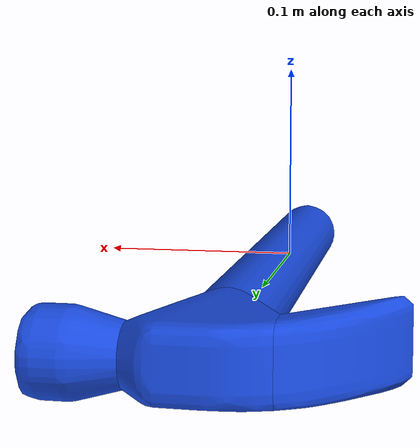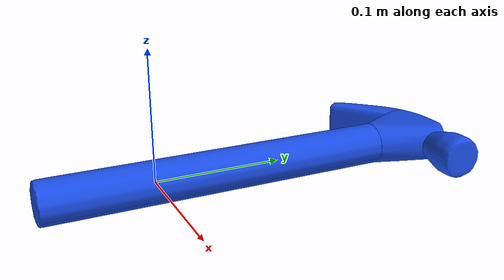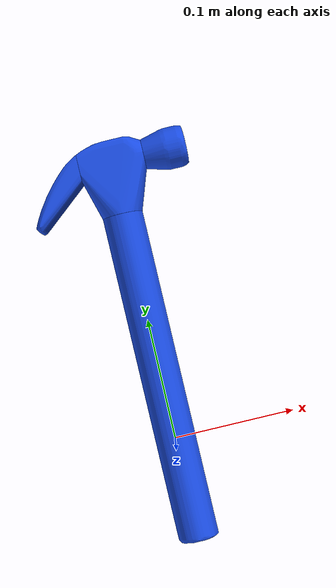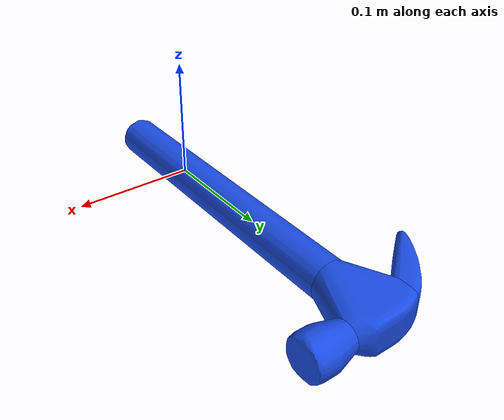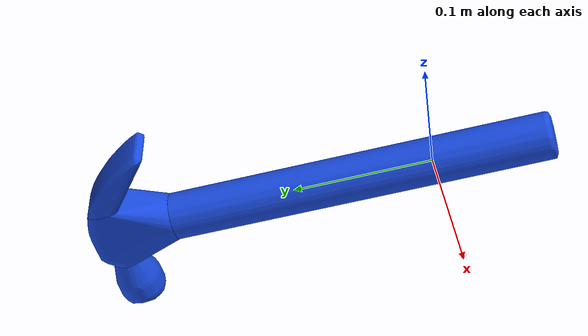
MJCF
<mujoco model="hammer_cylinder">
  <compiler meshdir="meshes" angle="radian"/>
  <default>
    <default class="visual"><geom contype="0" conaffinity="0" group="2" rgba="0.1 0.3 0.9 1"/></default>
    <default class="collision"><geom group="3"/></default>
  </default>
  <asset>
    <mesh name="hammer_cylinder_hull0" file="hammer_cylinder_hull0.obj"/>
    <mesh name="hammer_cylinder_hull1" file="hammer_cylinder_hull1.obj"/>
    <mesh name="hammer_cylinder_hull2" file="hammer_cylinder_hull2.obj"/>
    <mesh name="hammer_cylinder_hull3" file="hammer_cylinder_hull3.obj"/>
  </asset>
  <worldbody>
    <body name="object" pos="0 0 0">
      <freejoint name="object_free"/>
      <geom type="mesh" mesh="hammer_cylinder_hull0" class="visual"/>
      <geom type="mesh" mesh="hammer_cylinder_hull1" class="visual"/>
      <geom type="mesh" mesh="hammer_cylinder_hull2" class="visual"/>
      <geom type="mesh" mesh="hammer_cylinder_hull3" class="visual"/>
      <geom type="mesh" mesh="hammer_cylinder_hull0" class="collision"/>
      <geom type="mesh" mesh="hammer_cylinder_hull1" class="collision"/>
      <geom type="mesh" mesh="hammer_cylinder_hull2" class="collision"/>
      <geom type="mesh" mesh="hammer_cylinder_hull3" class="collision"/>
    </body>
  </worldbody>
</mujoco>
